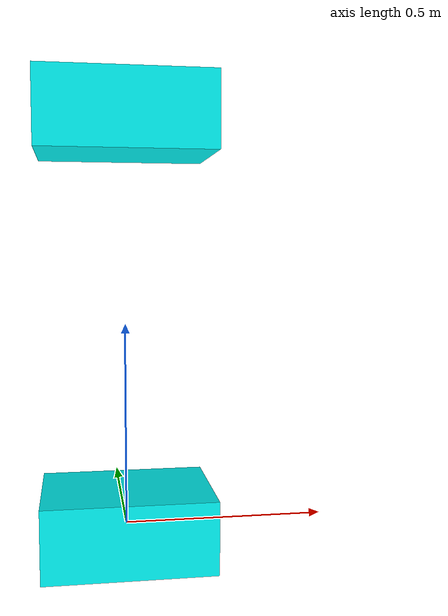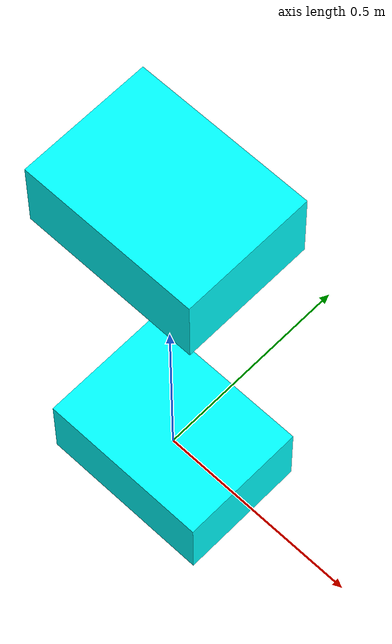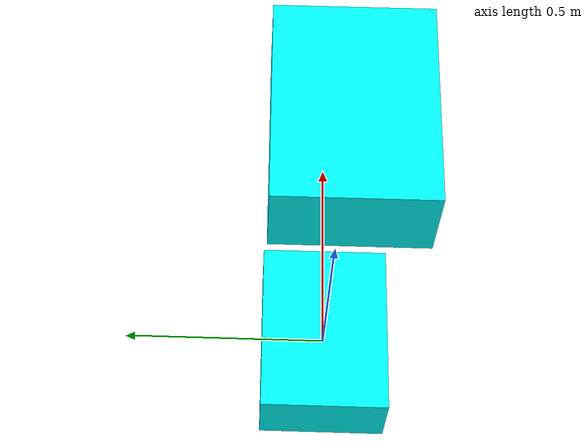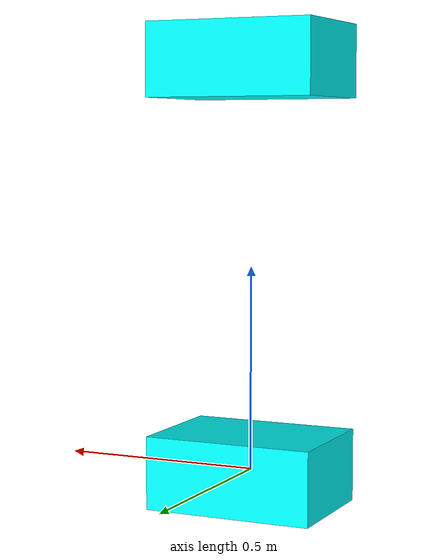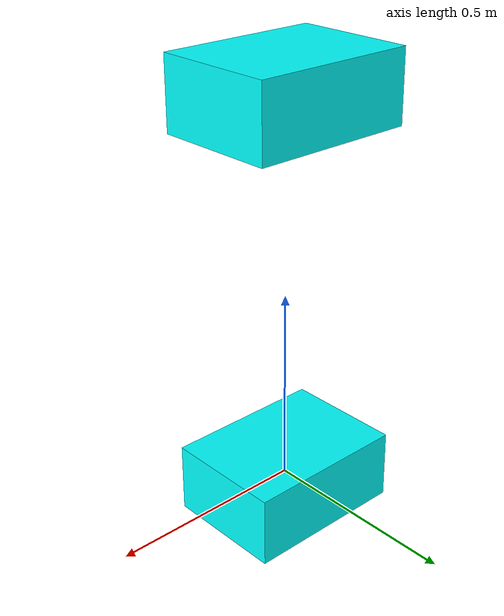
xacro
<?xml version="1.0"?>
<robot name="test" xmlns:xacro="http://ros.org/wiki/xacro">
  <xacro:macro name="box_inertia" params="m w h d">
    <inertial>
      <origin xyz="0 0 0" rpy="${pi/2} 0 ${pi/2}"/>
      <mass value="${m}"/>
      <inertia ixx="${(m/12) * (h*h + d*d)}" ixy="0.0" ixz="0.0" iyy="${(m/12) * (w*w + d*d)}" iyz="0.0" izz="${(m/12) * (w*w + h*h)}"/>
    </inertial>
  </xacro:macro>

  <xacro:property name="base_width" value="0.31"/>
  <xacro:property name="base_length" value="0.42"/>
  <xacro:property name="base_height" value="0.18"/>

  <xacro:property name="wheel_radius" value="0.10"/>
  <xacro:property name="wheel_width" value="0.04"/>
  <xacro:property name="wheel_ygap" value="0.025"/>
  <xacro:property name="wheel_zoff" value="0.05"/>
  <xacro:property name="wheel_xoff" value="0.12"/>

  <link name="base_footprint">
  	<xacro:box_inertia m="0" w="0" d="0" h="0"/>
  </link>

  <link name="base_link">
    <visual>
      <geometry>
        <box size="${base_length} ${base_width} ${base_height}"/>
      </geometry>
      <material name="Cyan">
        <color rgba="0 1.0 1.0 1.0"/>
      </material>
    </visual>

    <collision>
      <geometry>
        <box size="${base_length} ${base_width} ${base_height}"/>
      </geometry>
    </collision>

    <xacro:box_inertia m="15" w="${base_width}" d="${base_length}" h="${base_height}"/>
  </link>

    <joint name="base_joint" type="fixed">
        <parent link="base_link"/>
        <child link="base_footprint"/>
        <origin xyz="0.0 0.0 ${-(wheel_radius+wheel_zoff)}" rpy="0 0 0"/>
    </joint>

  <link name="upper_link">
    <visual>
      <geometry>
        <box size="${base_length} ${base_width} ${base_height}"/>
      </geometry>
      <material name="Cyan">
        <color rgba="0 1.0 1.0 1.0"/>
      </material>
    </visual>

    <collision>
      <geometry>
        <box size="${base_length} ${base_width} ${base_height}"/>
      </geometry>
    </collision>

    <xacro:box_inertia m="15" w="${base_width}" d="${base_length}" h="${base_height}"/>
  </link>

    <joint name="upper_joint" type="continuous">
        <parent link="base_link"/>
        <child link="upper_link"/>
        <origin xyz="0.0 0.0 1" rpy="0 0 0"/>
        <axis xyz="0.0 0.0 1"/>
    </joint>

  <ros2_control name="GazeboSystem" type="system">
    <hardware>
        <plugin>gazebo_ros2_control/GazeboSystem</plugin>
    </hardware>
    <joint name="upper_joint">
        <command_interface name="position">
            <param name="min">0</param>
            <param name="max">50</param>
        </command_interface>
        <state_interface name="position"/>
        <state_interface name="velocity"/>
    </joint>
  </ros2_control>
  <gazebo>
    <plugin filename="libgazebo_ros2_control.so" name="gazebo_ros2_control">
        <parameters>$(find 4widis_description)/config/simple_controllers.yaml</parameters>
    </plugin>
</gazebo>
</robot>
